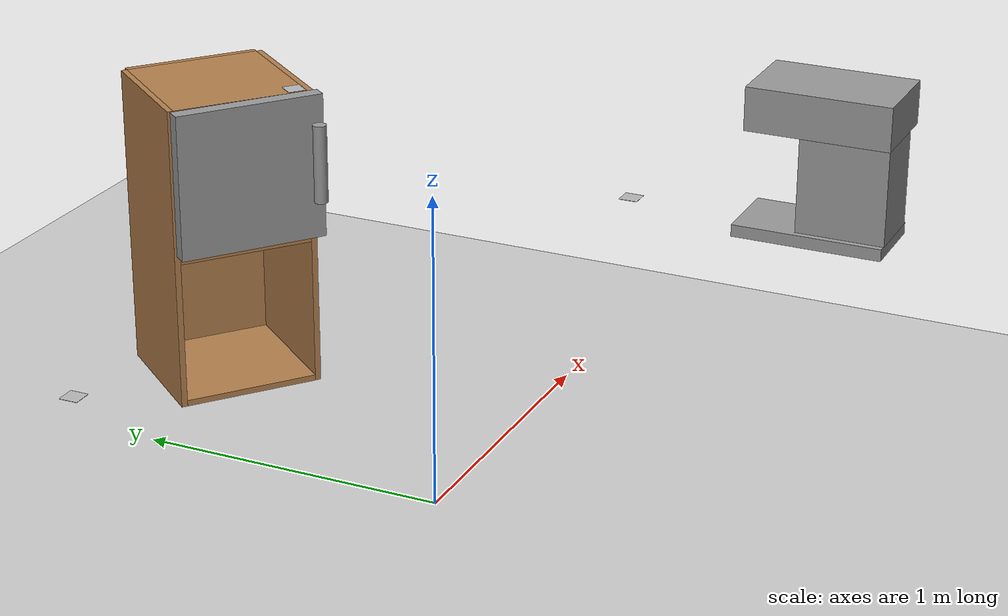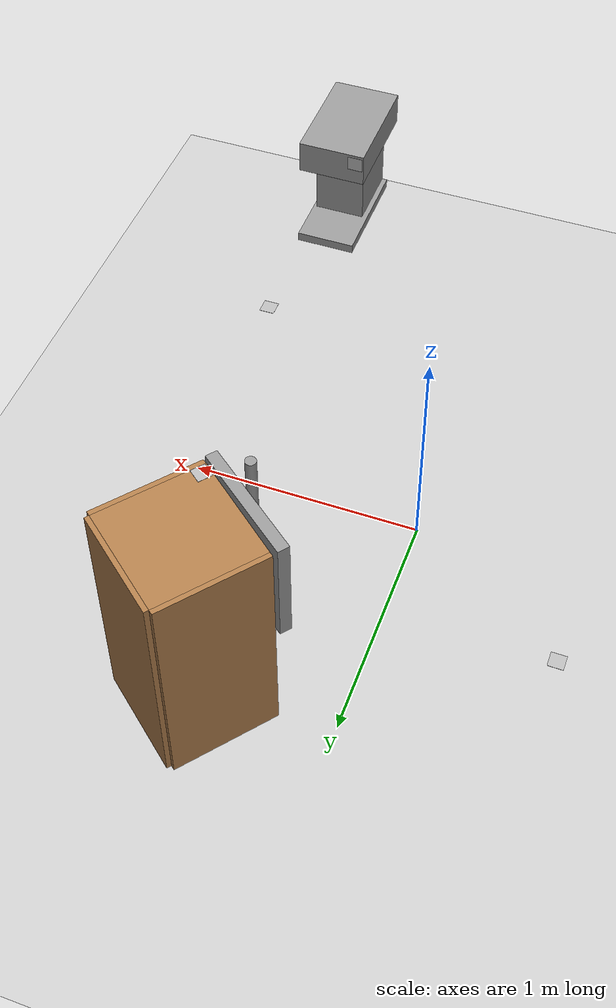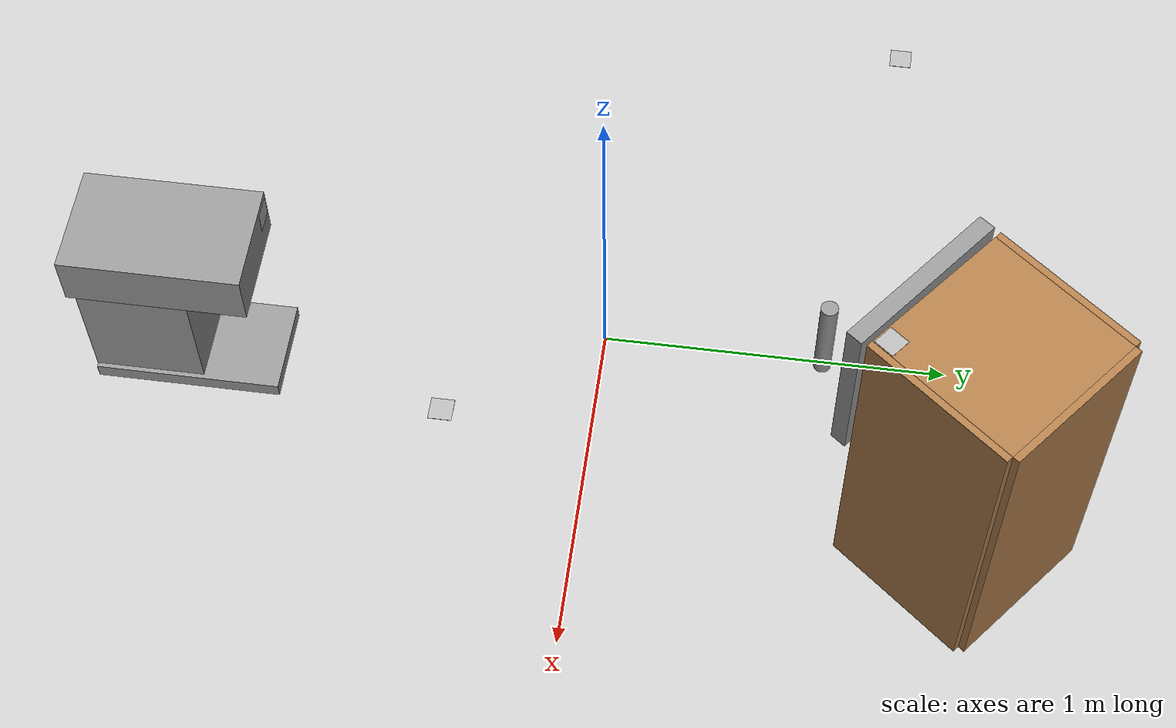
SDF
<sdf version="1.7">
 <world name="default">
  <light name="sun" type="directional">
   <pose>0 0 10 0 -0 0</pose>
   <diffuse>0.8 0.8 0.8 1</diffuse>
   <specular>0.2 0.2 0.2 1</specular>
   <attenuation>
    <range>1000</range>
    <constant>0.9</constant>
    <linear>0.01</linear>
    <quadratic>0.001</quadratic>
   </attenuation>
   <direction>-0.5 0.1 -0.9</direction>
   <spot><inner_angle>0</inner_angle><outer_angle>0</outer_angle><falloff>0</falloff></spot>
  </light>
  <model name="ground_plane">
   <static>1</static>
   <link name="link">
    <collision name="collision">
     <geometry><plane><normal>0 0 1</normal><size>100 100</size></plane></geometry>
     <surface>
      <contact><collide_bitmask>65535</collide_bitmask></contact>
      <friction><ode><mu>100</mu><mu2>50</mu2></ode></friction>
     </surface>
    </collision>
    <visual name="visual">
     <cast_shadows>0</cast_shadows>
     <geometry><plane><normal>0 0 1</normal><size>100 100</size></plane></geometry>
     <material>
      <script><uri>file://media/materials/scripts/gazebo.material</uri><name>Gazebo/Grey</name></script>
     </material>
    </visual>
   </link>
  </model>
  <gravity>0 0 -9.8</gravity>
  <magnetic_field>6e-06 2.3e-05 -4.2e-05</magnetic_field>
  <atmosphere type="adiabatic"/>
  <physics type="ode">
   <max_step_size>0.001</max_step_size>
   <real_time_factor>1</real_time_factor>
   <real_time_update_rate>1000</real_time_update_rate>
  </physics>
  <scene><ambient>0.4 0.4 0.4 1</ambient><background>0.7 0.7 0.7 1</background><shadows>1</shadows></scene>
  <spherical_coordinates>
   <surface_model>EARTH_WGS84</surface_model>
   <latitude_deg>0</latitude_deg>
   <longitude_deg>0</longitude_deg>
   <elevation>0</elevation>
   <heading_deg>0</heading_deg>
  </spherical_coordinates>
  <model name="Cabinet">
   <link name="link_1">
    <inertial>
     <mass>0.0117628</mass>
     <inertia>
      <ixx>0.00047208</ixx>
      <ixy>0</ixy>
      <ixz>0</ixz>
      <iyy>0.000233782</iyy>
      <iyz>0</iyz>
      <izz>0.000242892</izz>
     </inertia>
    </inertial>
    <pose>-0.080444 1.09691 0.789345 0 -0 0.910773</pose>
    <visual name="visual">
     <geometry><box><size>0.048406 0.495426 0.485956</size></box></geometry>
     <material>
      <lighting>1</lighting>
      <script><uri>file://media/materials/scripts/gazebo.material</uri><name>Gazebo/Grey</name></script>
      <shader type="pixel"/>
      <emissive>0 0 0 1</emissive>
     </material>
    </visual>
    <collision name="collision">
     <geometry><box><size>0.048406 0.495426 0.485956</size></box></geometry>
     <surface>
      <friction>
       <ode><mu>1</mu><mu2>1</mu2><fdir1>0 0 0</fdir1><slip1>0</slip1><slip2>0</slip2></ode>
       <torsional>
        <coefficient>1</coefficient>
        <patch_radius>0</patch_radius>
        <surface_radius>0</surface_radius>
        <use_patch_radius>1</use_patch_radius>
        <ode><slip>0</slip></ode>
       </torsional>
      </friction>
      <bounce><restitution_coefficient>0</restitution_coefficient><threshold>1e+06</threshold></bounce>
      <contact>
       <collide_without_contact>0</collide_without_contact>
       <collide_without_contact_bitmask>1</collide_without_contact_bitmask>
       <collide_bitmask>1</collide_bitmask>
       <ode>
        <soft_cfm>0</soft_cfm>
        <soft_erp>0.2</soft_erp>
        <kp>1e+13</kp>
        <kd>1</kd>
        <max_vel>0.01</max_vel>
        <min_depth>0</min_depth>
       </ode>
       <bullet>
        <split_impulse>1</split_impulse>
        <split_impulse_penetration_threshold>-0.01</split_impulse_penetration_threshold>
        <soft_cfm>0</soft_cfm>
        <soft_erp>0.2</soft_erp>
        <kp>1e+13</kp>
        <kd>1</kd>
       </bullet>
      </contact>
     </surface>
    </collision>
   </link>
   <link name="link_2">
    <inertial>
     <mass>0.000520077</mass>
     <inertia>
      <ixx>2.98392e-06</ixx>
      <ixy>0</ixy>
      <ixz>0</ixz>
      <iyy>2.98392e-06</iyy>
      <iyz>0</iyz>
      <izz>1.30256e-07</izz>
     </inertia>
    </inertial>
    <pose>-0.006569 0.88102 0.839102 0 -0 0.860373</pose>
    <visual name="visual">
     <geometry><cylinder><radius>0.022381</radius><length>0.259512</length></cylinder></geometry>
     <material>
      <lighting>1</lighting>
      <script><uri>file://media/materials/scripts/gazebo.material</uri><name>Gazebo/Grey</name></script>
      <shader type="pixel"/>
      <emissive>0 0 0 1</emissive>
     </material>
    </visual>
    <collision name="collision">
     <geometry><cylinder><radius>0.022381</radius><length>0.259512</length></cylinder></geometry>
     <surface>
      <friction>
       <ode><mu>1</mu><mu2>1</mu2><fdir1>0 0 0</fdir1><slip1>0</slip1><slip2>0</slip2></ode>
       <torsional>
        <coefficient>1</coefficient>
        <patch_radius>0</patch_radius>
        <surface_radius>0</surface_radius>
        <use_patch_radius>1</use_patch_radius>
        <ode><slip>0</slip></ode>
       </torsional>
      </friction>
      <bounce><restitution_coefficient>0</restitution_coefficient><threshold>1e+06</threshold></bounce>
      <contact>
       <collide_without_contact>0</collide_without_contact>
       <collide_without_contact_bitmask>1</collide_without_contact_bitmask>
       <collide_bitmask>1</collide_bitmask>
       <ode>
        <soft_cfm>0</soft_cfm>
        <soft_erp>0.2</soft_erp>
        <kp>1e+13</kp>
        <kd>1</kd>
        <max_vel>0.01</max_vel>
        <min_depth>0</min_depth>
       </ode>
       <bullet>
        <split_impulse>1</split_impulse>
        <split_impulse_penetration_threshold>-0.01</split_impulse_penetration_threshold>
        <soft_cfm>0</soft_cfm>
        <soft_erp>0.2</soft_erp>
        <kp>1e+13</kp>
        <kd>1</kd>
       </bullet>
      </contact>
     </surface>
    </collision>
   </link>
   <model name="cabinet">
    <static>1</static>
    <link name="cabinet_bottom_plate">
     <inertial>
      <pose>0 0 -1 0 -0 0</pose>
      <inertia><ixx>2.05</ixx><ixy>0</ixy><ixz>0</ixz><iyy>2.05</iyy><iyz>0</iyz><izz>2.05</izz></inertia>
      <mass>25</mass>
     </inertial>
     <collision name="cabinet_bottom_plate_geom">
      <pose>0 0 0.01 0 -0 0</pose>
      <geometry><box><size>0.45 0.45 0.02</size></box></geometry>
     </collision>
     <visual name="cabinet_bottom_plate_geom_visual">
      <pose>0 0 0.01 0 -0 0</pose>
      <geometry><box><size>0.45 0.45 0.02</size></box></geometry>
      <material>
       <script><uri>file://media/materials/scripts/gazebo.material</uri><name>Gazebo/Wood</name></script>
      </material>
     </visual>
     <collision name="cabinet_bottom_plate_geom_cabinet_back_plate">
      <pose>0.235 0 0.51 0 -0 0</pose>
      <geometry><box><size>0.02 0.45 1.02</size></box></geometry>
     </collision>
     <visual name="cabinet_bottom_plate_geom_cabinet_back_plate_visual">
      <pose>0.235 0 0.51 0 -0 0</pose>
      <geometry><box><size>0.02 0.45 1.02</size></box></geometry>
      <material>
       <script><uri>file://media/materials/scripts/gazebo.material</uri><name>Gazebo/Wood</name></script>
      </material>
     </visual>
     <collision name="cabinet_bottom_plate_geom_cabinet_left_plate">
      <pose>0 0.235 0.51 0 -0 0</pose>
      <geometry><box><size>0.45 0.02 1.02</size></box></geometry>
     </collision>
     <visual name="cabinet_bottom_plate_geom_cabinet_left_plate_visual">
      <pose>0 0.235 0.51 0 -0 0</pose>
      <geometry><box><size>0.45 0.02 1.02</size></box></geometry>
      <material>
       <script><uri>file://media/materials/scripts/gazebo.material</uri><name>Gazebo/Wood</name></script>
      </material>
     </visual>
     <collision name="cabinet_bottom_plate_geom_cabinet_middle_plate">
      <pose>0 0 0.51 0 -0 0</pose>
      <geometry><box><size>0.45 0.45 0.02</size></box></geometry>
     </collision>
     <visual name="cabinet_bottom_plate_geom_cabinet_middle_plate_visual">
      <pose>0 0 0.51 0 -0 0</pose>
      <geometry><box><size>0.45 0.45 0.02</size></box></geometry>
      <material>
       <script><uri>file://media/materials/scripts/gazebo.material</uri><name>Gazebo/Wood</name></script>
      </material>
     </visual>
     <collision name="cabinet_bottom_plate_geom_cabinet_right_plate">
      <pose>0 -0.235 0.51 0 -0 0</pose>
      <geometry><box><size>0.45 0.02 1.02</size></box></geometry>
     </collision>
     <visual name="cabinet_bottom_plate_geom_cabinet_right_plate_visual">
      <pose>0 -0.235 0.51 0 -0 0</pose>
      <geometry><box><size>0.45 0.02 1.02</size></box></geometry>
      <material>
       <script><uri>file://media/materials/scripts/gazebo.material</uri><name>Gazebo/Wood</name></script>
      </material>
     </visual>
     <collision name="cabinet_bottom_plate_geom_cabinet_top_plate">
      <pose>0 0 1.01 0 -0 0</pose>
      <geometry><box><size>0.45 0.45 0.02</size></box></geometry>
     </collision>
     <visual name="cabinet_bottom_plate_geom_cabinet_top_plate_visual">
      <pose>0 0 1.01 0 -0 0</pose>
      <geometry><box><size>0.45 0.45 0.02</size></box></geometry>
      <material>
       <script><uri>file://media/materials/scripts/gazebo.material</uri><name>Gazebo/Wood</name></script>
      </material>
     </visual>
    </link>
    <pose>0.080286 1.30641 0.008098 0 -0 0.89481</pose>
   </model>
   <joint name="Handle_link" type="fixed">
    <parent>link_1</parent>
    <child>link_2</child>
    <physics>
     <ode><limit><cfm>0</cfm><erp>0.2</erp></limit><suspension><cfm>0</cfm><erp>0.2</erp></suspension></ode>
    </physics>
   </joint>
   <joint name="cabinet_bottom_plate_JOINT_1" type="revolute">
    <parent>cabinet::cabinet_bottom_plate</parent>
    <child>link_1</child>
    <pose>0 0.26 0 0 -0 0</pose>
    <axis>
     <xyz>0 0 1</xyz>
     <limit>
      <lower>-1.79769e+308</lower>
      <upper>1.79769e+308</upper>
      <effort>-1</effort>
      <velocity>-1</velocity>
     </limit>
     <dynamics>
      <spring_reference>0</spring_reference>
      <spring_stiffness>0</spring_stiffness>
      <damping>0</damping>
      <friction>0</friction>
     </dynamics>
    </axis>
    <physics>
     <ode><limit><cfm>0</cfm><erp>0.2</erp></limit><suspension><cfm>0</cfm><erp>0.2</erp></suspension></ode>
    </physics>
   </joint>
   <static>0</static>
   <pose>0.473395 -0.253578 -0 0 -0 -0.003015</pose>
  </model>
  <model name="Coffee_Machine_1">
   <link name="link_5">
    <inertial>
     <mass>0.00415706</mass>
     <inertia>
      <ixx>7.41751e-05</ixx>
      <ixy>0</ixy>
      <ixz>0</ixz>
      <iyy>2.04665e-05</iyy>
      <iyz>0</iyz>
      <izz>9.36716e-05</izz>
     </inertia>
    </inertial>
    <pose>0.00228 0.040287 -0.193801 0 -0 0</pose>
    <visual name="visual">
     <geometry><box><size>0.240166 0.461213 0.037416</size></box></geometry>
     <material>
      <lighting>1</lighting>
      <script><uri>file://media/materials/scripts/gazebo.material</uri><name>Gazebo/Grey</name></script>
      <shader type="pixel"/>
      <emissive>0 0 0 1</emissive>
     </material>
    </visual>
    <collision name="collision">
     <geometry><box><size>0.240166 0.461213 0.037416</size></box></geometry>
     <surface>
      <friction>
       <ode><mu>1</mu><mu2>1</mu2><fdir1>0 0 0</fdir1><slip1>0</slip1><slip2>0</slip2></ode>
       <torsional>
        <coefficient>1</coefficient>
        <patch_radius>0</patch_radius>
        <surface_radius>0</surface_radius>
        <use_patch_radius>1</use_patch_radius>
        <ode><slip>0</slip></ode>
       </torsional>
      </friction>
      <bounce><restitution_coefficient>0</restitution_coefficient><threshold>1e+06</threshold></bounce>
      <contact>
       <collide_without_contact>0</collide_without_contact>
       <collide_without_contact_bitmask>1</collide_without_contact_bitmask>
       <collide_bitmask>1</collide_bitmask>
       <ode>
        <soft_cfm>0</soft_cfm>
        <soft_erp>0.2</soft_erp>
        <kp>1e+13</kp>
        <kd>1</kd>
        <max_vel>0.01</max_vel>
        <min_depth>0</min_depth>
       </ode>
       <bullet>
        <split_impulse>1</split_impulse>
        <split_impulse_penetration_threshold>-0.01</split_impulse_penetration_threshold>
        <soft_cfm>0</soft_cfm>
        <soft_erp>0.2</soft_erp>
        <kp>1e+13</kp>
        <kd>1</kd>
       </bullet>
      </contact>
     </surface>
    </collision>
   </link>
   <link name="link_6">
    <inertial>
     <mass>0.0188786</mass>
     <inertia>
      <ixx>0.000293131</ixx>
      <ixy>0</ixy>
      <ixz>0</ixz>
      <iyy>0.000243767</iyy>
      <iyz>0</iyz>
      <izz>0.000183915</izz>
     </inertia>
    </inertial>
    <pose>0.006953 -0.055344 -0.009314 0 -0 0</pose>
    <visual name="visual">
     <geometry><box><size>0.206793 0.272288 0.33494</size></box></geometry>
     <material>
      <lighting>1</lighting>
      <script><uri>file://media/materials/scripts/gazebo.material</uri><name>Gazebo/Grey</name></script>
      <shader type="pixel"/>
      <emissive>0 0 0 1</emissive>
     </material>
    </visual>
    <collision name="collision">
     <geometry><box><size>0.206793 0.272288 0.33494</size></box></geometry>
     <surface>
      <friction>
       <ode><mu>1</mu><mu2>1</mu2><fdir1>0 0 0</fdir1><slip1>0</slip1><slip2>0</slip2></ode>
       <torsional>
        <coefficient>1</coefficient>
        <patch_radius>0</patch_radius>
        <surface_radius>0</surface_radius>
        <use_patch_radius>1</use_patch_radius>
        <ode><slip>0</slip></ode>
       </torsional>
      </friction>
      <bounce><restitution_coefficient>0</restitution_coefficient><threshold>1e+06</threshold></bounce>
      <contact>
       <collide_without_contact>0</collide_without_contact>
       <collide_without_contact_bitmask>1</collide_without_contact_bitmask>
       <collide_bitmask>1</collide_bitmask>
       <ode>
        <soft_cfm>0</soft_cfm>
        <soft_erp>0.2</soft_erp>
        <kp>1e+13</kp>
        <kd>1</kd>
        <max_vel>0.01</max_vel>
        <min_depth>0</min_depth>
       </ode>
       <bullet>
        <split_impulse>1</split_impulse>
        <split_impulse_penetration_threshold>-0.01</split_impulse_penetration_threshold>
        <soft_cfm>0</soft_cfm>
        <soft_erp>0.2</soft_erp>
        <kp>1e+13</kp>
        <kd>1</kd>
       </bullet>
      </contact>
     </surface>
    </collision>
   </link>
   <link name="link_7">
    <inertial>
     <mass>0.0161715</mass>
     <inertia>
      <ixx>0.000286446</ixx>
      <ixy>0</ixy>
      <ixz>0</ixz>
      <iyy>0.000124808</iyy>
      <iyz>0</iyz>
      <izz>0.000362588</izz>
     </inertia>
    </inertial>
    <pose>-0.009235 0.015057 0.203114 0 -0 0</pose>
    <visual name="visual">
     <geometry><box><size>0.273052 0.441022 0.134373</size></box></geometry>
     <material>
      <lighting>1</lighting>
      <script><uri>file://media/materials/scripts/gazebo.material</uri><name>Gazebo/Grey</name></script>
      <shader type="pixel"/>
      <emissive>0 0 0 1</emissive>
     </material>
    </visual>
    <collision name="collision">
     <geometry><box><size>0.273052 0.441022 0.134373</size></box></geometry>
     <surface>
      <friction>
       <ode><mu>1</mu><mu2>1</mu2><fdir1>0 0 0</fdir1><slip1>0</slip1><slip2>0</slip2></ode>
       <torsional>
        <coefficient>1</coefficient>
        <patch_radius>0</patch_radius>
        <surface_radius>0</surface_radius>
        <use_patch_radius>1</use_patch_radius>
        <ode><slip>0</slip></ode>
       </torsional>
      </friction>
      <bounce><restitution_coefficient>0</restitution_coefficient><threshold>1e+06</threshold></bounce>
      <contact>
       <collide_without_contact>0</collide_without_contact>
       <collide_without_contact_bitmask>1</collide_without_contact_bitmask>
       <collide_bitmask>1</collide_bitmask>
       <ode>
        <soft_cfm>0</soft_cfm>
        <soft_erp>0.2</soft_erp>
        <kp>1e+13</kp>
        <kd>1</kd>
        <max_vel>0.01</max_vel>
        <min_depth>0</min_depth>
       </ode>
       <bullet>
        <split_impulse>1</split_impulse>
        <split_impulse_penetration_threshold>-0.01</split_impulse_penetration_threshold>
        <soft_cfm>0</soft_cfm>
        <soft_erp>0.2</soft_erp>
        <kp>1e+13</kp>
        <kd>1</kd>
       </bullet>
      </contact>
     </surface>
    </collision>
   </link>
   <joint name="link_5_JOINT_0" type="fixed">
    <parent>link_5</parent>
    <child>link_6</child>
    <physics>
     <ode><limit><cfm>0</cfm><erp>0.2</erp></limit><suspension><cfm>0</cfm><erp>0.2</erp></suspension></ode>
    </physics>
   </joint>
   <joint name="link_6_JOINT_1" type="fixed">
    <parent>link_6</parent>
    <child>link_7</child>
    <physics>
     <ode><limit><cfm>0</cfm><erp>0.2</erp></limit><suspension><cfm>0</cfm><erp>0.2</erp></suspension></ode>
    </physics>
   </joint>
   <static>1</static>
   <pose>0.670226 -0.984673 1.00854 0 -0 0</pose>
  </model>
  <model name="aruco_marker_6cm_238">
   <static>0</static>
   <link name="marker">
    <inertial>
     <mass>0.1</mass>
     <inertia><ixx>0</ixx><ixy>0</ixy><ixz>0</ixz><iyy>0</iyy><iyz>0</iyz><izz>0</izz></inertia>
    </inertial>
    <visual name="visual">
     <pose>0 0 0 0 -0 1.57</pose>
     <geometry><box><size>0.06 0.06 0.001</size></box></geometry>
     <material>
      <script>
       <uri>model://aruco_marker_6cm_238/material/scripts</uri>
       <uri>model://aruco_marker_6cm_238/material/textures</uri>
       <name>Aruco/aruco_marker_6cm_238</name>
      </script>
     </material>
    </visual>
    <collision name="collision"><geometry><box><size>0.06 0.06 0.001</size></box></geometry></collision>
    <self_collide>1</self_collide>
    <gravity>0</gravity>
   </link>
   <pose>0.560443 -0.748399 1.23804 -1.5708 0 0</pose>
  </model>
  <model name="aruco_marker_6cm_26">
   <static>0</static>
   <link name="marker">
    <inertial>
     <mass>0.1</mass>
     <inertia><ixx>0</ixx><ixy>0</ixy><ixz>0</ixz><iyy>0</iyy><iyz>0</iyz><izz>0</izz></inertia>
    </inertial>
    <visual name="visual">
     <pose>0 0 0 0 -0 1.57</pose>
     <geometry><box><size>0.06 0.06 0.001</size></box></geometry>
     <material>
      <script>
       <uri>model://aruco_marker_6cm_26/material/scripts</uri>
       <uri>model://aruco_marker_6cm_26/material/textures</uri>
       <name>Aruco/aruco_marker_6cm_26</name>
      </script>
     </material>
    </visual>
    <collision name="collision"><geometry><box><size>0.06 0.06 0.001</size></box></geometry></collision>
    <self_collide>1</self_collide>
   </link>
   <pose>0.588332 0.782902 1.0286 -4.3e-05 -0.000143 -0.670917</pose>
  </model>
  <model name="aruco_marker_6cm_582">
   <static>0</static>
   <link name="marker">
    <inertial>
     <mass>0.1</mass>
     <inertia><ixx>0</ixx><ixy>0</ixy><ixz>0</ixz><iyy>0</iyy><iyz>0</iyz><izz>0</izz></inertia>
    </inertial>
    <visual name="visual">
     <pose>0 0 0 0 -0 1.57</pose>
     <geometry><box><size>0.06 0.06 0.001</size></box></geometry>
     <material>
      <script>
       <uri>model://aruco_marker_6cm_582/material/scripts</uri>
       <uri>model://aruco_marker_6cm_582/material/textures</uri>
       <name>Aruco/aruco_marker_6cm_582</name>
      </script>
     </material>
    </visual>
    <collision name="collision"><geometry><box><size>0.06 0.06 0.001</size></box></geometry></collision>
    <self_collide>1</self_collide>
   </link>
   <pose>0.768782 -0.308604 0.775501 1.3e-05 1.6e-05 0</pose>
  </model>
  <model name="aruco_marker_6cm_63">
   <static>0</static>
   <link name="marker">
    <inertial>
     <mass>0.1</mass>
     <inertia><ixx>0</ixx><ixy>0</ixy><ixz>0</ixz><iyy>0</iyy><iyz>0</iyz><izz>0</izz></inertia>
    </inertial>
    <visual name="visual">
     <pose>0 0 0 0 -0 1.57</pose>
     <geometry><box><size>0.06 0.06 0.001</size></box></geometry>
     <material>
      <script>
       <uri>model://aruco_marker_6cm_63/material/scripts</uri>
       <uri>model://aruco_marker_6cm_63/material/textures</uri>
       <name>Aruco/aruco_marker_6cm_63</name>
      </script>
     </material>
    </visual>
    <collision name="collision"><geometry><box><size>0.06 0.06 0.001</size></box></geometry></collision>
    <self_collide>1</self_collide>
    <gravity>0</gravity>
   </link>
   <pose>-0.736927 0.770488 0.52522 -0.004956 -0.003816 -9e-06</pose>
  </model>
 </world>
</sdf>
